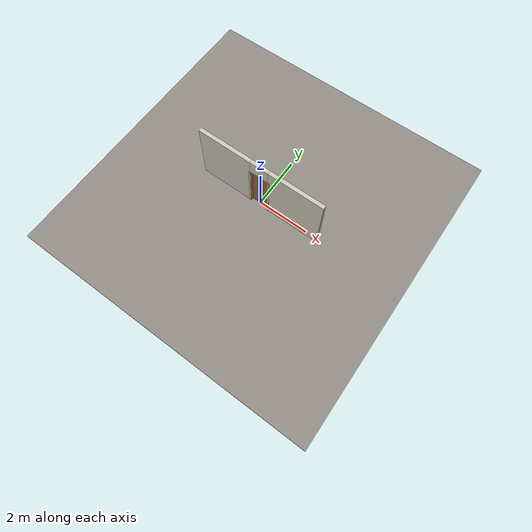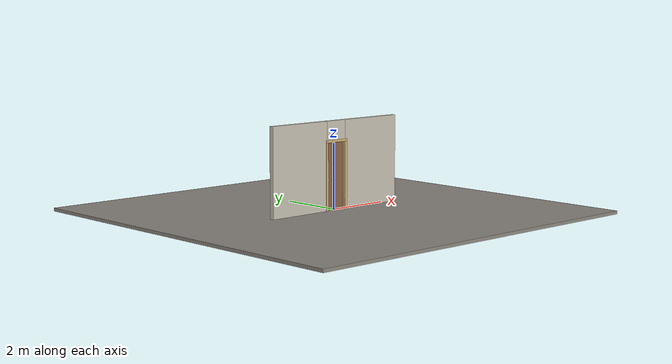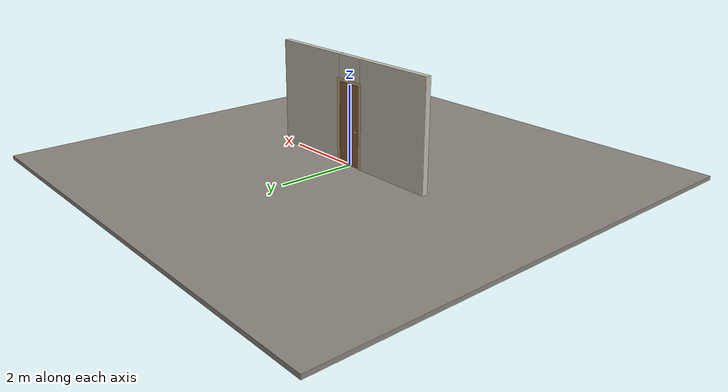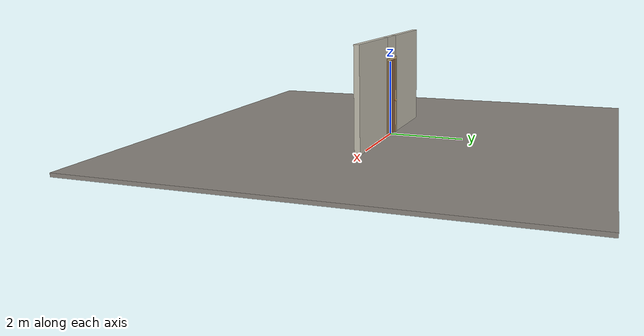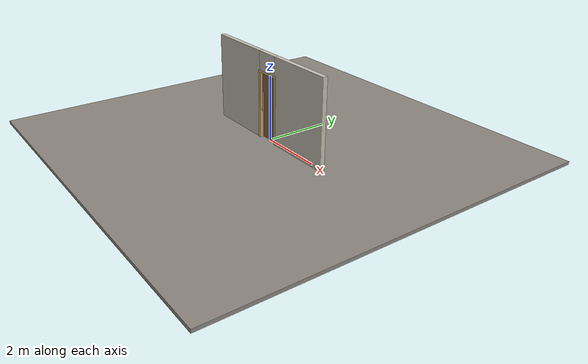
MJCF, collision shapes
<?xml version="1.0" ?>
<mujoco model="db0329_swing_single_full">
  <compiler angle="radian" meshdir="../../hardware" texturedir="../../textures" autolimits="true" inertiafromgeom="false"/>
  <option timestep="0.002" integrator="implicitfast" cone="elliptic" impratio="10" noslip_iterations="3">
    <flag multiccd="enable"/>
  </option>
  <size memory="16M"/>
  <default>
    <geom condim="4" solref="0.005 1" solimp="0.95 0.99 0.001"/>
    <joint solreflimit="0.005 1" solimplimit="0.95 0.99 0.001"/>
    <tendon solreflimit="0.005 1"/>
    <equality solref="0.002 1"/>
  </default>
  <visual>
    <headlight ambient="0.4 0.4 0.4" diffuse="0.7 0.7 0.7" specular="0.2 0.2 0.2"/>
    <quality shadowsize="4096"/>
    <map znear="0.01" zfar="60"/>
  </visual>
  <asset>
    <mesh name="hinge_2af0f4d6ca" file="hinge_2af0f4d6ca.obj"/>
    <mesh name="hinge_jamb_c0c0a62ada" file="hinge_jamb_c0c0a62ada.obj"/>
    <mesh name="knob_d1888f6f03" file="knob_d1888f6f03.obj"/>
    <material name="mat_floor" rgba="0.55 0.53 0.5 1" specular="0.2" shininess="0.15" reflectance="0"/>
    <material name="mat_wall" rgba="0.78 0.76 0.7 1" specular="0.2" shininess="0.1" reflectance="0"/>
    <material name="mat_leaf" rgba="0.553 0.385 0.252 1" specular="0.2" shininess="0.45" reflectance="0"/>
    <material name="mat_leaf_louver" rgba="0.47 0.328 0.214 1" specular="0.2" shininess="0.4" reflectance="0"/>
    <material name="mat_hinge" rgba="0.65 0.66 0.68 1" specular="0.74" shininess="0.5" reflectance="0.36"/>
    <material name="mat_op_brass" rgba="0.85 0.66 0.3 1" specular="0.8" shininess="0.75" reflectance="0.4"/>
    <material name="mat_trim" rgba="0.85 0.66 0.3 1" specular="0.8" shininess="0.75" reflectance="0.4"/>
    <material name="mat_bolt" rgba="0.85 0.66 0.3 1" specular="0.8" shininess="0.75" reflectance="0.4"/>
    <material name="mat_frame" rgba="0.82 0.7 0.5 1" specular="0.2" shininess="0.45" reflectance="0"/>
    <texture name="skybox" type="skybox" builtin="gradient" rgb1="0.6 0.7 0.85" rgb2="0.9 0.92 0.95" width="256" height="256"/>
  </asset>
  <worldbody>
    <light name="sun" pos="1.5 -2.5 4" dir="-0.3 0.5 -0.8" directional="true" diffuse="0.8 0.8 0.8" specular="0.3 0.3 0.3" castshadow="true"/>
    <light name="fill" pos="-1.5 2.5 3" dir="0.3 -0.5 -0.7" directional="true" diffuse="0.35 0.35 0.4" castshadow="false"/>
    <camera name="robot_view" pos="0 -2.585687 1.734312" xyaxes="1 0 0 0 0.26963 0.962964" fovy="52"/>
    <camera name="far_view" pos="0 2.498687 1.734312" xyaxes="-1 0 0 0 -0.26963 0.962964" fovy="52"/>
    <camera name="iso" pos="-1.932062 -2.178937 2.141063" xyaxes="0.741536 -0.670913 0 0.242917 0.268487 0.932151" fovy="46"/>
    <camera name="detail_handle" pos="-0.089 -0.8685 1.194" xyaxes="0.97561 0.219512 0 -0.070934 0.315262 0.94635" fovy="38"/>
    <geom name="floor" type="box" size="6 6 0.05" pos="0 0 -0.05" material="mat_floor" group="0" contype="1" conaffinity="1" friction="0.8 0.005 0.0001" density="2400"/>
    <geom name="wall_left" type="box" size="1.0585 0.0725 1.35" pos="-1.4415 -0.0435 1.35" material="mat_wall" group="0" contype="1" conaffinity="1" friction="0.6 0.005 0.0001" density="800"/>
    <geom name="wall_right" type="box" size="1.0735 0.0725 1.35" pos="1.4265 -0.0435 1.35" material="mat_wall" group="0" contype="1" conaffinity="1" friction="0.6 0.005 0.0001" density="800"/>
    <geom name="wall_header" type="box" size="0.368 0.0725 0.303" pos="-0.015 -0.0435 2.397" material="mat_wall" group="0" contype="1" conaffinity="1" friction="0.6 0.005 0.0001" density="800"/>
    <geom name="hinge_0_jamb" type="mesh" mesh="hinge_jamb_c0c0a62ada" pos="0.331 0.029 0.259" quat="0 0 0 1" material="mat_hinge" group="1" contype="0" conaffinity="0" density="7850"/>
    <geom name="hinge_1_jamb" type="mesh" mesh="hinge_jamb_c0c0a62ada" pos="0.331 0.029 1.025" quat="0 0 0 1" material="mat_hinge" group="1" contype="0" conaffinity="0" density="7850"/>
    <geom name="hinge_2_jamb" type="mesh" mesh="hinge_jamb_c0c0a62ada" pos="0.331 0.029 1.861" quat="0 0 0 1" material="mat_hinge" group="1" contype="0" conaffinity="0" density="7850"/>
    <geom name="jamb_hinge" type="box" size="0.0095 0.0725 1.0225" pos="0.3435 -0.0435 1.0225" material="mat_frame" group="0" contype="1" conaffinity="1" friction="0.6 0.005 0.0001" density="400"/>
    <geom name="strike_914_wall_n" type="box" size="0.0245 0.054075 0.0167" pos="-0.3585 -0.061925 0.914" material="mat_frame" group="0" contype="1" conaffinity="1" friction="0.6 0.005 0.0001" density="400"/>
    <geom name="strike_914_wall_p" type="box" size="0.0245 0.008 0.0167" pos="-0.3585 0.01585 0.914" material="mat_frame" group="0" contype="1" conaffinity="1" friction="0.6 0.005 0.0001" density="400"/>
    <geom name="strike_914_ramp" type="box" size="0.0245 0.01649 0.0167" pos="-0.363136 0.028673 0.914" quat="0.977148 0 0 0.212558" material="mat_frame" group="0" contype="1" conaffinity="1" friction="0.12 0.005 0.0001" density="400"/>
    <geom name="strike_914_back" type="box" size="0.01615 0.00785 0.0167" pos="-0.36685 0 0.914" material="mat_frame" group="0" contype="1" conaffinity="1" friction="0.6 0.005 0.0001" density="400"/>
    <geom name="jamb_strike_0" type="box" size="0.0245 0.0725 0.44865" pos="-0.3585 -0.0435 0.44865" material="mat_frame" group="0" contype="1" conaffinity="1" friction="0.6 0.005 0.0001" density="400"/>
    <geom name="jamb_strike_1" type="box" size="0.0245 0.0725 0.55715" pos="-0.3585 -0.0435 1.48785" material="mat_frame" group="0" contype="1" conaffinity="1" friction="0.6 0.005 0.0001" density="400"/>
    <geom name="jamb_head" type="box" size="0.368 0.0725 0.0095" pos="-0.015 -0.0435 2.0545" material="mat_frame" group="0" contype="1" conaffinity="1" friction="0.6 0.005 0.0001" density="400"/>
    <geom name="head_stud" type="box" size="0.368 0.0725 0.015" pos="-0.015 -0.0435 2.079" material="mat_wall" group="0" contype="1" conaffinity="1" friction="0.6 0.005 0.0001" density="500"/>
    <geom name="stop_hinge" type="box" size="0.0055 0.016 1.0225" pos="0.3285 -0.0385 1.0225" material="mat_frame" group="0" contype="1" conaffinity="1" friction="0.6 0.005 0.0001" density="400"/>
    <geom name="stop_strike" type="box" size="0.0055 0.016 1.0225" pos="-0.3285 -0.0385 1.0225" material="mat_frame" group="0" contype="1" conaffinity="1" friction="0.6 0.005 0.0001" density="400"/>
    <geom name="stop_head" type="box" size="0.334 0.016 0.0055" pos="0 -0.0385 2.0395" material="mat_frame" group="0" contype="1" conaffinity="1" friction="0.6 0.005 0.0001" density="400"/>
    <geom name="casing_l_n" type="box" size="0.035 0.008 1.032" pos="-0.383 -0.124 1.0225" material="mat_frame" group="2" contype="0" conaffinity="0" density="400"/>
    <geom name="casing_r_n" type="box" size="0.035 0.008 1.032" pos="0.383 -0.124 1.0225" material="mat_frame" group="2" contype="0" conaffinity="0" density="400"/>
    <geom name="casing_h_n" type="box" size="0.418 0.008 0.035" pos="0 -0.124 2.094" material="mat_frame" group="2" contype="0" conaffinity="0" density="400"/>
    <geom name="casing_l_p" type="box" size="0.035 0.008 1.032" pos="-0.383 0.037 1.0225" material="mat_frame" group="2" contype="0" conaffinity="0" density="400"/>
    <geom name="casing_r_p" type="box" size="0.035 0.008 1.032" pos="0.383 0.037 1.0225" material="mat_frame" group="2" contype="0" conaffinity="0" density="400"/>
    <geom name="casing_h_p" type="box" size="0.418 0.008 0.035" pos="0 0.037 2.094" material="mat_frame" group="2" contype="0" conaffinity="0" density="400"/>
    <site name="approach_point" pos="0 -1.5 0" quat="1 0 0 0" size="0.05" rgba="0.2 0.9 0.2 0.5" group="4"/>
    <site name="goal_point" pos="0 1.5 0" quat="1 0 0 0" size="0.05" rgba="0.2 0.9 0.2 0.5" group="4"/>
    <site name="door_plane_center" pos="0 0 1.0225" quat="1 0 0 0" size="0.02" rgba="0.2 0.9 0.2 0.5" group="4"/>
    <body name="leaf" pos="0.334 0 0">
      <inertial pos="-0.328143 0.000234 1.025311" mass="30.191362" quat="0.499599 0.500614 -0.499378 0.500408" diaginertia="1.134531122 10.427527386 11.552029887"/>
      <joint name="leaf_hinge" type="hinge" axis="0 0 -1" pos="-0.003 0.029 0" limited="true" range="0 1.745329" damping="0.119633" frictionloss="0.368205" armature="0.02"/>
      <geom name="leaf_slab" type="box" size="0.33 0.022 1.016" pos="-0.333 0 1.025" material="mat_leaf" group="0" contype="1" conaffinity="1" friction="0.35 0.005 0.0001" density="1"/>
      <geom name="leaf_louver_0" type="box" size="0.24 0.002 0.026356" pos="-0.333 0 0.257621" quat="0.953717 0.300706 0 0" material="mat_leaf_louver" group="1" contype="0" conaffinity="0" density="1"/>
      <geom name="leaf_louver_1" type="box" size="0.24 0.002 0.026356" pos="-0.333 0 0.307824" quat="0.953717 0.300706 0 0" material="mat_leaf_louver" group="1" contype="0" conaffinity="0" density="1"/>
      <geom name="leaf_louver_2" type="box" size="0.24 0.002 0.026356" pos="-0.333 0 0.358026" quat="0.953717 0.300706 0 0" material="mat_leaf_louver" group="1" contype="0" conaffinity="0" density="1"/>
      <geom name="leaf_louver_3" type="box" size="0.24 0.002 0.026356" pos="-0.333 0 0.408228" quat="0.953717 0.300706 0 0" material="mat_leaf_louver" group="1" contype="0" conaffinity="0" density="1"/>
      <geom name="leaf_louver_4" type="box" size="0.24 0.002 0.026356" pos="-0.333 0 0.458431" quat="0.953717 0.300706 0 0" material="mat_leaf_louver" group="1" contype="0" conaffinity="0" density="1"/>
      <geom name="leaf_louver_5" type="box" size="0.24 0.002 0.026356" pos="-0.333 0 0.508633" quat="0.953717 0.300706 0 0" material="mat_leaf_louver" group="1" contype="0" conaffinity="0" density="1"/>
      <geom name="leaf_louver_6" type="box" size="0.24 0.002 0.026356" pos="-0.333 0 0.558835" quat="0.953717 0.300706 0 0" material="mat_leaf_louver" group="1" contype="0" conaffinity="0" density="1"/>
      <geom name="leaf_louver_7" type="box" size="0.24 0.002 0.026356" pos="-0.333 0 0.609038" quat="0.953717 0.300706 0 0" material="mat_leaf_louver" group="1" contype="0" conaffinity="0" density="1"/>
      <geom name="leaf_louver_8" type="box" size="0.24 0.002 0.026356" pos="-0.333 0 0.65924" quat="0.953717 0.300706 0 0" material="mat_leaf_louver" group="1" contype="0" conaffinity="0" density="1"/>
      <geom name="leaf_louver_9" type="box" size="0.24 0.002 0.026356" pos="-0.333 0 0.709442" quat="0.953717 0.300706 0 0" material="mat_leaf_louver" group="1" contype="0" conaffinity="0" density="1"/>
      <geom name="leaf_louver_10" type="box" size="0.24 0.002 0.026356" pos="-0.333 0 0.759645" quat="0.953717 0.300706 0 0" material="mat_leaf_louver" group="1" contype="0" conaffinity="0" density="1"/>
      <geom name="leaf_louver_11" type="box" size="0.24 0.002 0.026356" pos="-0.333 0 0.809847" quat="0.953717 0.300706 0 0" material="mat_leaf_louver" group="1" contype="0" conaffinity="0" density="1"/>
      <geom name="leaf_louver_12" type="box" size="0.24 0.002 0.026356" pos="-0.333 0 0.860049" quat="0.953717 0.300706 0 0" material="mat_leaf_louver" group="1" contype="0" conaffinity="0" density="1"/>
      <geom name="leaf_louver_13" type="box" size="0.24 0.002 0.026356" pos="-0.333 0 0.910252" quat="0.953717 0.300706 0 0" material="mat_leaf_louver" group="1" contype="0" conaffinity="0" density="1"/>
      <geom name="leaf_louver_14" type="box" size="0.24 0.002 0.026356" pos="-0.333 0 0.960454" quat="0.953717 0.300706 0 0" material="mat_leaf_louver" group="1" contype="0" conaffinity="0" density="1"/>
      <geom name="leaf_louver_15" type="box" size="0.24 0.002 0.026356" pos="-0.333 0 1.010656" quat="0.953717 0.300706 0 0" material="mat_leaf_louver" group="1" contype="0" conaffinity="0" density="1"/>
      <geom name="leaf_louver_16" type="box" size="0.24 0.002 0.026356" pos="-0.333 0 1.060859" quat="0.953717 0.300706 0 0" material="mat_leaf_louver" group="1" contype="0" conaffinity="0" density="1"/>
      <geom name="leaf_louver_17" type="box" size="0.24 0.002 0.026356" pos="-0.333 0 1.111061" quat="0.953717 0.300706 0 0" material="mat_leaf_louver" group="1" contype="0" conaffinity="0" density="1"/>
      <geom name="leaf_louver_18" type="box" size="0.24 0.002 0.026356" pos="-0.333 0 1.161264" quat="0.953717 0.300706 0 0" material="mat_leaf_louver" group="1" contype="0" conaffinity="0" density="1"/>
      <geom name="leaf_louver_19" type="box" size="0.24 0.002 0.026356" pos="-0.333 0 1.211466" quat="0.953717 0.300706 0 0" material="mat_leaf_louver" group="1" contype="0" conaffinity="0" density="1"/>
      <geom name="leaf_louver_20" type="box" size="0.24 0.002 0.026356" pos="-0.333 0 1.261668" quat="0.953717 0.300706 0 0" material="mat_leaf_louver" group="1" contype="0" conaffinity="0" density="1"/>
      <geom name="leaf_louver_21" type="box" size="0.24 0.002 0.026356" pos="-0.333 0 1.311871" quat="0.953717 0.300706 0 0" material="mat_leaf_louver" group="1" contype="0" conaffinity="0" density="1"/>
      <geom name="leaf_louver_22" type="box" size="0.24 0.002 0.026356" pos="-0.333 0 1.362073" quat="0.953717 0.300706 0 0" material="mat_leaf_louver" group="1" contype="0" conaffinity="0" density="1"/>
      <geom name="leaf_louver_23" type="box" size="0.24 0.002 0.026356" pos="-0.333 0 1.412275" quat="0.953717 0.300706 0 0" material="mat_leaf_louver" group="1" contype="0" conaffinity="0" density="1"/>
      <geom name="leaf_louver_24" type="box" size="0.24 0.002 0.026356" pos="-0.333 0 1.462478" quat="0.953717 0.300706 0 0" material="mat_leaf_louver" group="1" contype="0" conaffinity="0" density="1"/>
      <geom name="leaf_louver_25" type="box" size="0.24 0.002 0.026356" pos="-0.333 0 1.51268" quat="0.953717 0.300706 0 0" material="mat_leaf_louver" group="1" contype="0" conaffinity="0" density="1"/>
      <geom name="leaf_louver_26" type="box" size="0.24 0.002 0.026356" pos="-0.333 0 1.562882" quat="0.953717 0.300706 0 0" material="mat_leaf_louver" group="1" contype="0" conaffinity="0" density="1"/>
      <geom name="leaf_louver_27" type="box" size="0.24 0.002 0.026356" pos="-0.333 0 1.613085" quat="0.953717 0.300706 0 0" material="mat_leaf_louver" group="1" contype="0" conaffinity="0" density="1"/>
      <geom name="leaf_louver_28" type="box" size="0.24 0.002 0.026356" pos="-0.333 0 1.663287" quat="0.953717 0.300706 0 0" material="mat_leaf_louver" group="1" contype="0" conaffinity="0" density="1"/>
      <geom name="leaf_louver_29" type="box" size="0.24 0.002 0.026356" pos="-0.333 0 1.713489" quat="0.953717 0.300706 0 0" material="mat_leaf_louver" group="1" contype="0" conaffinity="0" density="1"/>
      <geom name="leaf_louver_30" type="box" size="0.24 0.002 0.026356" pos="-0.333 0 1.763692" quat="0.953717 0.300706 0 0" material="mat_leaf_louver" group="1" contype="0" conaffinity="0" density="1"/>
      <geom name="leaf_louver_31" type="box" size="0.24 0.002 0.026356" pos="-0.333 0 1.813894" quat="0.953717 0.300706 0 0" material="mat_leaf_louver" group="1" contype="0" conaffinity="0" density="1"/>
      <geom name="leaf_louver_32" type="box" size="0.24 0.002 0.026356" pos="-0.333 0 1.864096" quat="0.953717 0.300706 0 0" material="mat_leaf_louver" group="1" contype="0" conaffinity="0" density="1"/>
      <geom name="leaf_louver_33" type="box" size="0.24 0.002 0.026356" pos="-0.333 0 1.914299" quat="0.953717 0.300706 0 0" material="mat_leaf_louver" group="1" contype="0" conaffinity="0" density="1"/>
      <geom name="hinge_0" type="mesh" mesh="hinge_2af0f4d6ca" pos="-0.003 0.029 0.259" quat="0 0 0 1" material="mat_hinge" group="1" contype="0" conaffinity="0" density="7850"/>
      <geom name="hinge_1" type="mesh" mesh="hinge_2af0f4d6ca" pos="-0.003 0.029 1.025" quat="0 0 0 1" material="mat_hinge" group="1" contype="0" conaffinity="0" density="7850"/>
      <geom name="hinge_2" type="mesh" mesh="hinge_2af0f4d6ca" pos="-0.003 0.029 1.861" quat="0 0 0 1" material="mat_hinge" group="1" contype="0" conaffinity="0" density="7850"/>
      <geom name="leaf_latch_bolt_faceplate" type="box" size="0.0006 0.01235 0.0267" pos="-0.6624 0 0.914" material="mat_bolt" group="1" contype="0" conaffinity="0" density="8500"/>
      <site name="leaf_edge_mid" pos="-0.663 0 1.016" quat="1 0 0 0" size="0.02" rgba="0.2 0.9 0.2 0.5" group="4"/>
      <body name="leaf_handle" pos="-0.603 0 0.914">
        <inertial pos="0 0 0" mass="1.151952" quat="0.707107 0 0 -0.707107" diaginertia="0.000312514 0.004264603 0.004264603"/>
        <joint name="leaf_handle_hinge" type="hinge" axis="0 1 0" limited="true" range="0 0.87" damping="0.143614" frictionloss="0.038" stiffness="0.5" springref="-0.5" armature="0.01"/>
        <geom name="leaf_handle_spindle" type="cylinder" size="0.006 0.03" pos="0 0 0" quat="0.707107 -0.707107 0 0" material="mat_op_brass" group="1" contype="0" conaffinity="0" density="7850"/>
        <geom name="leaf_handle_knob_n" type="mesh" mesh="knob_d1888f6f03" pos="0 -0.022 0" quat="0 0 -0.707107 0.707107" material="mat_op_brass" group="1" contype="0" conaffinity="0" density="3000"/>
        <geom name="leaf_handle_knob_col_n" type="sphere" size="0.0243" pos="0 -0.0685 0" material="mat_op_brass" group="0" contype="1" conaffinity="1" friction="0.9 0.01 0.0001" density="3000"/>
        <geom name="leaf_handle_knob_neck_n" type="cylinder" size="0.011 0.012" pos="0 -0.034 0" quat="0.707107 -0.707107 0 0" material="mat_op_brass" group="3" contype="1" conaffinity="1" rgba="0.8 0.3 0.3 0.25" friction="0.6 0.005 0.0001" density="3000"/>
        <geom name="leaf_handle_knob_p" type="mesh" mesh="knob_d1888f6f03" pos="0 0.022 0" quat="0 0 0.707107 0.707107" material="mat_op_brass" group="1" contype="0" conaffinity="0" density="3000"/>
        <geom name="leaf_handle_knob_col_p" type="sphere" size="0.0243" pos="0 0.0685 0" material="mat_op_brass" group="0" contype="1" conaffinity="1" friction="0.9 0.01 0.0001" density="3000"/>
        <geom name="leaf_handle_knob_neck_p" type="cylinder" size="0.011 0.012" pos="0 0.034 0" quat="0.707107 -0.707107 0 0" material="mat_op_brass" group="3" contype="1" conaffinity="1" rgba="0.8 0.3 0.3 0.25" friction="0.6 0.005 0.0001" density="3000"/>
        <site name="leaf_handle_grip_n" pos="0 -0.0685 0" quat="1 0 0 0" size="0.012" rgba="0.2 0.9 0.2 0.5" group="4"/>
        <site name="leaf_handle_grip_p" pos="0 0.0685 0" quat="1 0 0 0" size="0.012" rgba="0.2 0.9 0.2 0.5" group="4"/>
      </body>
      <body name="leaf_latch_bolt" pos="-0.663 0 0.914">
        <inertial pos="0.00865 0 0" mass="0.041419" quat="0.92388 0.382683 0 0" diaginertia="0.000000798 0.000005598 0.000005598"/>
        <joint name="leaf_latch_bolt_slide" type="slide" axis="1 0 0" limited="true" range="0 0.0127" damping="2" frictionloss="0.3" stiffness="300" springref="-0.008333" armature="0.1"/>
        <geom name="leaf_latch_bolt_capsule" type="capsule" size="0.00635 0.015" pos="0.00865 0 0" quat="0.707107 0 -0.707107 0" material="mat_bolt" group="0" contype="1" conaffinity="1" friction="0.2 0.005 0.0001" density="8500"/>
      </body>
    </body>
  </worldbody>
  <tendon>
    <fixed name="leaf_latch_bolt_coupling" limited="true" range="0 10">
      <joint joint="leaf_latch_bolt_slide" coef="1"/>
      <joint joint="leaf_handle_hinge" coef="-0.015679"/>
    </fixed>
  </tendon>
  <sensor>
    <jointpos name="leaf_hinge_pos" joint="leaf_hinge"/>
    <jointvel name="leaf_hinge_vel" joint="leaf_hinge"/>
    <jointpos name="leaf_handle_hinge_pos" joint="leaf_handle_hinge"/>
    <jointvel name="leaf_handle_hinge_vel" joint="leaf_handle_hinge"/>
    <jointpos name="leaf_latch_bolt_slide_pos" joint="leaf_latch_bolt_slide"/>
    <jointvel name="leaf_latch_bolt_slide_vel" joint="leaf_latch_bolt_slide"/>
  </sensor>
</mujoco>
